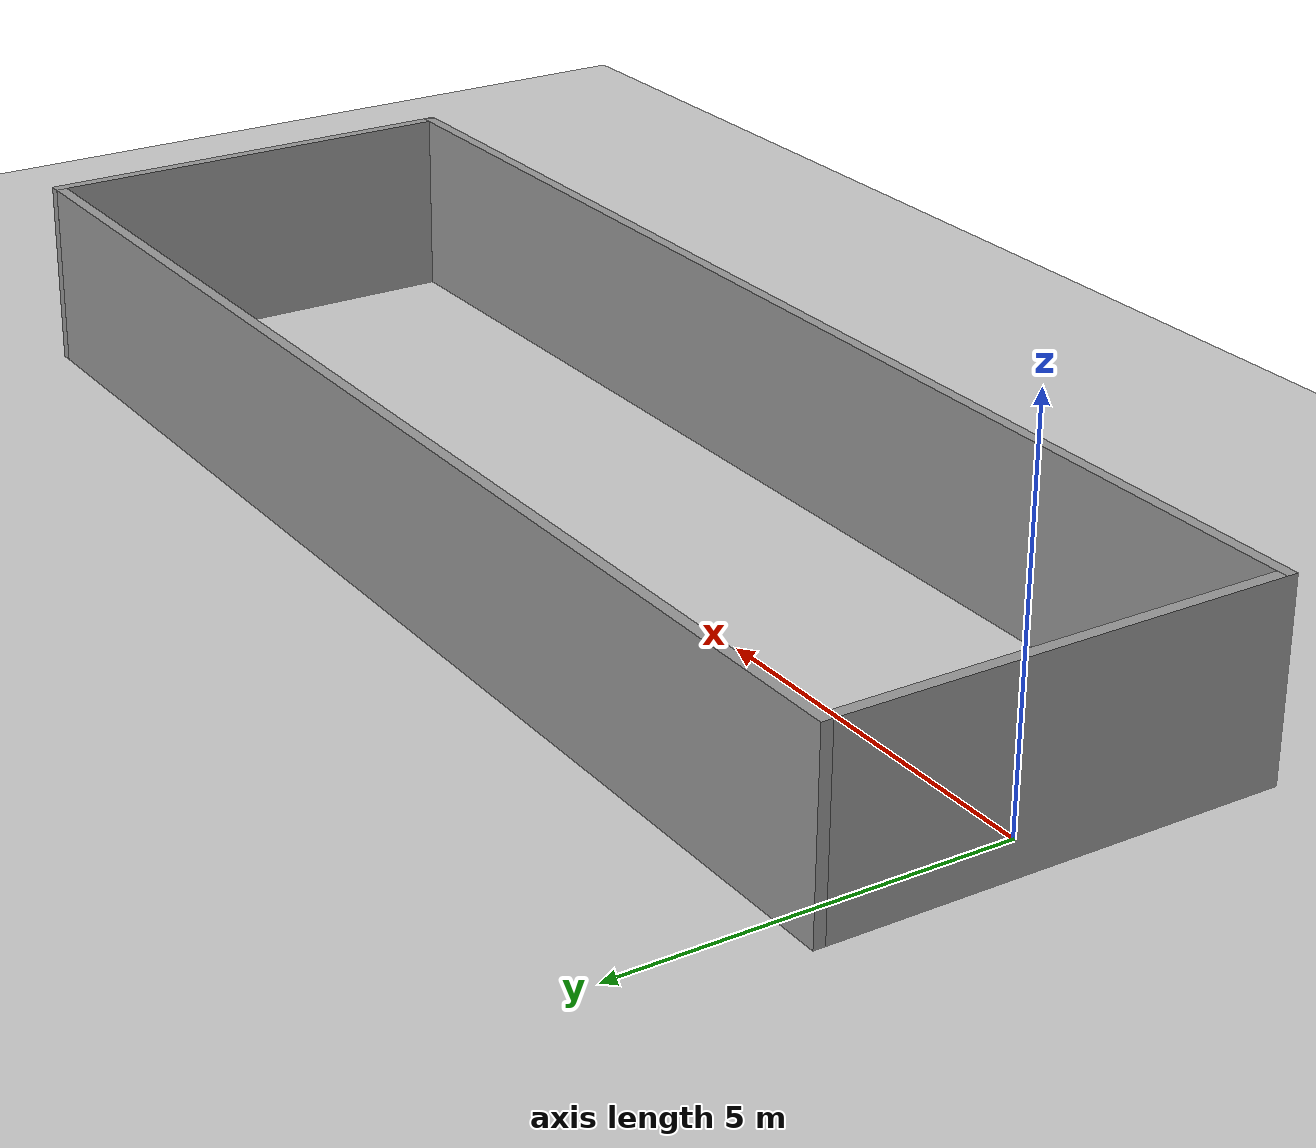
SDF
<sdf version="1.6">
 <world name="default">
  <light name="sun" type="directional">
   <pose>0 0 10 0 -0 0</pose>
   <diffuse>0.8 0.8 0.8 1</diffuse>
   <specular>0.2 0.2 0.2 1</specular>
   <attenuation>
    <range>1000</range>
    <constant>0.9</constant>
    <linear>0.01</linear>
    <quadratic>0.001</quadratic>
   </attenuation>
   <direction>-0.5 0.1 -0.9</direction>
  </light>
  <model name="ground_plane">
   <static>1</static>
   <link name="link">
    <collision name="collision">
     <geometry><plane><normal>0 0 1</normal><size>100 100</size></plane></geometry>
     <surface><friction><ode><mu>100</mu><mu2>50</mu2></ode></friction></surface>
    </collision>
    <visual name="visual">
     <cast_shadows>0</cast_shadows>
     <geometry><plane><normal>0 0 1</normal><size>100 100</size></plane></geometry>
     <material>
      <script><uri>file://media/materials/scripts/gazebo.material</uri><name>Gazebo/Grey</name></script>
     </material>
    </visual>
   </link>
  </model>
  <gravity>0 0 -9.8</gravity>
  <magnetic_field>6e-06 2.3e-05 -4.2e-05</magnetic_field>
  <atmosphere type="adiabatic"/>
  <physics name="default_physics" default="0" type="ode">
   <max_step_size>0.001</max_step_size>
   <real_time_factor>1</real_time_factor>
   <real_time_update_rate>1000</real_time_update_rate>
  </physics>
  <scene><ambient>0.4 0.4 0.4 1</ambient><background>0.7 0.7 0.7 1</background><shadows>1</shadows></scene>
  <spherical_coordinates>
   <surface_model>EARTH_WGS84</surface_model>
   <latitude_deg>0</latitude_deg>
   <longitude_deg>0</longitude_deg>
   <elevation>0</elevation>
   <heading_deg>0</heading_deg>
  </spherical_coordinates>
  <model name="moving_cylinder">
   <pose>0 1 0.5 0 0 0</pose>
   <link name="link">
    <collision name="collision">
     <geometry><cylinder><radius>0.1</radius><length>1.0</length></cylinder></geometry>
    </collision>
    <visual name="visual">
     <geometry><cylinder><radius>0.1</radius><length>1.0</length></cylinder></geometry>
    </visual>
   </link>
   <script>
    <loop>true</loop>
    <delay_start>0.0</delay_start>
    <auto_start>true</auto_start>
    <trajectory id="0" type="walking">
     <waypoint><time>0</time><pose>2 -2 0.5 0 0 0</pose></waypoint>
     <waypoint><time>12.5</time><pose>2 2 0.5 0 0 0</pose></waypoint>
    </trajectory>
   </script>
  </model>
  <model name="18X6_wall">
   <pose>8.39572 -0.04129 0 0 -0 0</pose>
   <link name="Wall_1">
    <collision name="Wall_1_Collision">
     <geometry><box><size>18 0.15 2.5</size></box></geometry>
     <pose>0 0 1.25 0 -0 0</pose>
    </collision>
    <visual name="Wall_1_Visual">
     <pose>0 0 1.25 0 -0 0</pose>
     <geometry><box><size>18 0.15 2.5</size></box></geometry>
     <material>
      <script><uri>file://media/materials/scripts/gazebo.material</uri><name>Gazebo/Grey</name></script>
      <ambient>1 1 1 1</ambient>
     </material>
     <meta><layer>0</layer></meta>
    </visual>
    <pose>0 -2.925 0 0 -0 0</pose>
   </link>
   <link name="Wall_4">
    <collision name="Wall_4_Collision">
     <geometry><box><size>6 0.15 2.5</size></box></geometry>
     <pose>0 0 1.25 0 -0 0</pose>
    </collision>
    <visual name="Wall_4_Visual">
     <pose>0 0 1.25 0 -0 0</pose>
     <geometry><box><size>6 0.15 2.5</size></box></geometry>
     <material>
      <script><uri>file://media/materials/scripts/gazebo.material</uri><name>Gazebo/Grey</name></script>
      <ambient>1 1 1 1</ambient>
     </material>
     <meta><layer>0</layer></meta>
    </visual>
    <pose>8.925 0 0 0 -0 1.5708</pose>
   </link>
   <link name="Wall_5">
    <collision name="Wall_5_Collision">
     <geometry><box><size>18 0.15 2.5</size></box></geometry>
     <pose>0 0 1.25 0 -0 0</pose>
    </collision>
    <visual name="Wall_5_Visual">
     <pose>0 0 1.25 0 -0 0</pose>
     <geometry><box><size>18 0.15 2.5</size></box></geometry>
     <material>
      <script><uri>file://media/materials/scripts/gazebo.material</uri><name>Gazebo/Grey</name></script>
      <ambient>1 1 1 1</ambient>
     </material>
     <meta><layer>0</layer></meta>
    </visual>
    <pose>0 2.925 0 0 -0 3.14159</pose>
   </link>
   <link name="Wall_6">
    <collision name="Wall_6_Collision">
     <geometry><box><size>6 0.15 2.5</size></box></geometry>
     <pose>0 0 1.25 0 -0 0</pose>
    </collision>
    <visual name="Wall_6_Visual">
     <pose>0 0 1.25 0 -0 0</pose>
     <geometry><box><size>6 0.15 2.5</size></box></geometry>
     <material>
      <script><uri>file://media/materials/scripts/gazebo.material</uri><name>Gazebo/Grey</name></script>
      <ambient>1 1 1 1</ambient>
     </material>
     <meta><layer>0</layer></meta>
    </visual>
    <pose>-8.925 0 0 0 -0 -1.5708</pose>
   </link>
   <static>1</static>
  </model>
 </world>
</sdf>
